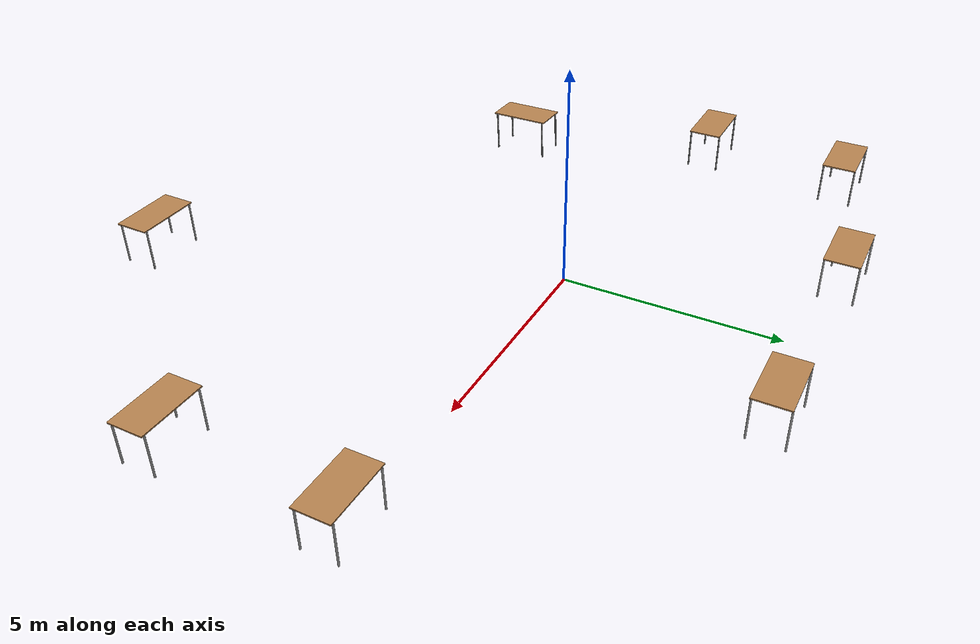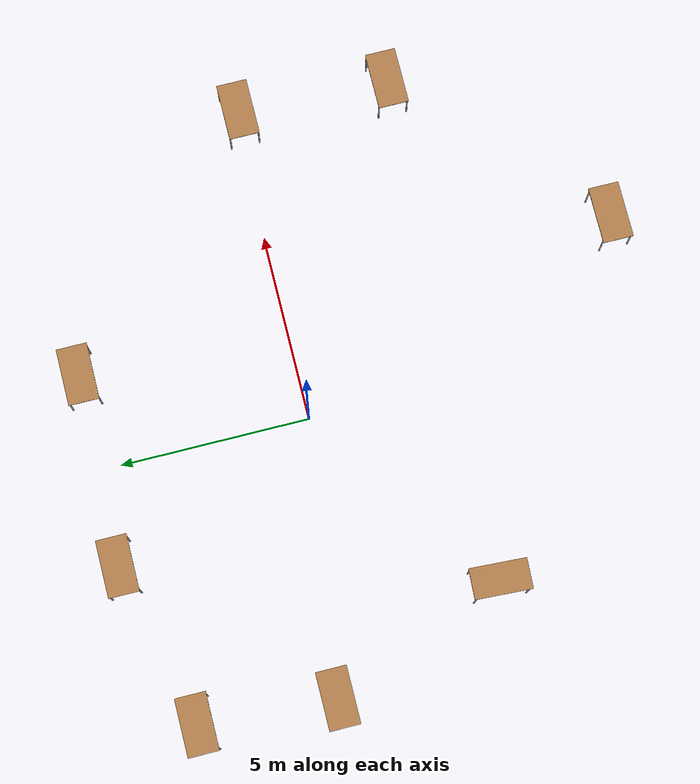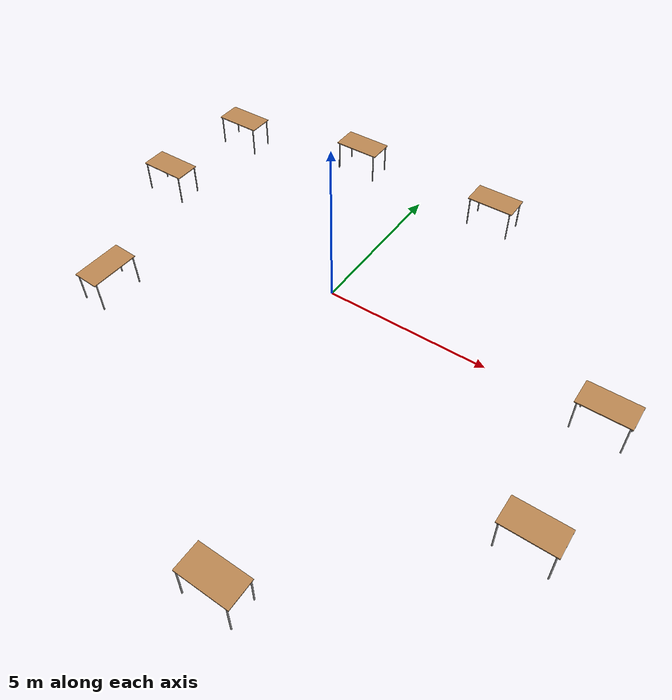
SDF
<?xml version='1.0'?>
<sdf version='1.6'>
  <model name='model'>
    <model name='table'>
      <static>1</static>
      <link name='link'>
        <collision name='surface'>
          <pose frame=''>0 0 1 0 -0 0</pose>
          <geometry>
            <box>
              <size>1.5 0.8 0.03</size>
            </box>
          </geometry>
          <surface>
            <friction>
              <ode>
                <mu>0.6</mu>
                <mu2>0.6</mu2>
              </ode>
            </friction>
          </surface>
        </collision>
        <visual name='visual1'>
          <pose frame=''>0 0 1 0 -0 0</pose>
          <geometry>
            <box>
              <size>1.5 0.8 0.03</size>
            </box>
          </geometry>
          <material>
            <script>
              <uri>file://media/materials/scripts/gazebo.material</uri>
              <name>Gazebo/Wood</name>
            </script>
          </material>
        </visual>
        <collision name='front_left_leg'>
          <pose frame=''>0.68 0.38 0.5 0 -0 0</pose>
          <geometry>
            <cylinder>
              <radius>0.02</radius>
              <length>1</length>
            </cylinder>
          </geometry>
        </collision>
        <visual name='front_left_leg'>
          <pose frame=''>0.68 0.38 0.5 0 -0 0</pose>
          <geometry>
            <cylinder>
              <radius>0.02</radius>
              <length>1</length>
            </cylinder>
          </geometry>
          <material>
            <script>
              <uri>file://media/materials/scripts/gazebo.material</uri>
              <name>Gazebo/Grey</name>
            </script>
          </material>
        </visual>
        <collision name='front_right_leg'>
          <pose frame=''>0.68 -0.38 0.5 0 -0 0</pose>
          <geometry>
            <cylinder>
              <radius>0.02</radius>
              <length>1</length>
            </cylinder>
          </geometry>
        </collision>
        <visual name='front_right_leg'>
          <pose frame=''>0.68 -0.38 0.5 0 -0 0</pose>
          <geometry>
            <cylinder>
              <radius>0.02</radius>
              <length>1</length>
            </cylinder>
          </geometry>
          <material>
            <script>
              <uri>file://media/materials/scripts/gazebo.material</uri>
              <name>Gazebo/Grey</name>
            </script>
          </material>
        </visual>
        <collision name='back_right_leg'>
          <pose frame=''>-0.68 -0.38 0.5 0 -0 0</pose>
          <geometry>
            <cylinder>
              <radius>0.02</radius>
              <length>1</length>
            </cylinder>
          </geometry>
        </collision>
        <visual name='back_right_leg'>
          <pose frame=''>-0.68 -0.38 0.5 0 -0 0</pose>
          <geometry>
            <cylinder>
              <radius>0.02</radius>
              <length>1</length>
            </cylinder>
          </geometry>
          <material>
            <script>
              <uri>file://media/materials/scripts/gazebo.material</uri>
              <name>Gazebo/Grey</name>
            </script>
          </material>
        </visual>
        <collision name='back_left_leg'>
          <pose frame=''>-0.68 0.38 0.5 0 -0 0</pose>
          <geometry>
            <cylinder>
              <radius>0.02</radius>
              <length>1</length>
            </cylinder>
          </geometry>
        </collision>
        <visual name='back_left_leg'>
          <pose frame=''>-0.68 0.38 0.5 0 -0 0</pose>
          <geometry>
            <cylinder>
              <radius>0.02</radius>
              <length>1</length>
            </cylinder>
          </geometry>
          <material>
            <script>
              <uri>file://media/materials/scripts/gazebo.material</uri>
              <name>Gazebo/Grey</name>
            </script>
          </material>
        </visual>
      </link>
      <pose frame=''>-7.17173 1.02852 0.005879 0 -0 0</pose>
    </model>
    <model name='table_clone'>
      <static>1</static>
      <link name='link'>
        <collision name='surface'>
          <pose frame=''>0 0 1 0 -0 0</pose>
          <geometry>
            <box>
              <size>1.5 0.8 0.03</size>
            </box>
          </geometry>
          <surface>
            <friction>
              <ode>
                <mu>0.6</mu>
                <mu2>0.6</mu2>
              </ode>
            </friction>
          </surface>
        </collision>
        <visual name='visual1'>
          <pose frame=''>0 0 1 0 -0 0</pose>
          <geometry>
            <box>
              <size>1.5 0.8 0.03</size>
            </box>
          </geometry>
          <material>
            <script>
              <uri>file://media/materials/scripts/gazebo.material</uri>
              <name>Gazebo/Wood</name>
            </script>
          </material>
        </visual>
        <collision name='front_left_leg'>
          <pose frame=''>0.68 0.38 0.5 0 -0 0</pose>
          <geometry>
            <cylinder>
              <radius>0.02</radius>
              <length>1</length>
            </cylinder>
          </geometry>
        </collision>
        <visual name='front_left_leg'>
          <pose frame=''>0.68 0.38 0.5 0 -0 0</pose>
          <geometry>
            <cylinder>
              <radius>0.02</radius>
              <length>1</length>
            </cylinder>
          </geometry>
          <material>
            <script>
              <uri>file://media/materials/scripts/gazebo.material</uri>
              <name>Gazebo/Grey</name>
            </script>
          </material>
        </visual>
        <collision name='front_right_leg'>
          <pose frame=''>0.68 -0.38 0.5 0 -0 0</pose>
          <geometry>
            <cylinder>
              <radius>0.02</radius>
              <length>1</length>
            </cylinder>
          </geometry>
        </collision>
        <visual name='front_right_leg'>
          <pose frame=''>0.68 -0.38 0.5 0 -0 0</pose>
          <geometry>
            <cylinder>
              <radius>0.02</radius>
              <length>1</length>
            </cylinder>
          </geometry>
          <material>
            <script>
              <uri>file://media/materials/scripts/gazebo.material</uri>
              <name>Gazebo/Grey</name>
            </script>
          </material>
        </visual>
        <collision name='back_right_leg'>
          <pose frame=''>-0.68 -0.38 0.5 0 -0 0</pose>
          <geometry>
            <cylinder>
              <radius>0.02</radius>
              <length>1</length>
            </cylinder>
          </geometry>
        </collision>
        <visual name='back_right_leg'>
          <pose frame=''>-0.68 -0.38 0.5 0 -0 0</pose>
          <geometry>
            <cylinder>
              <radius>0.02</radius>
              <length>1</length>
            </cylinder>
          </geometry>
          <material>
            <script>
              <uri>file://media/materials/scripts/gazebo.material</uri>
              <name>Gazebo/Grey</name>
            </script>
          </material>
        </visual>
        <collision name='back_left_leg'>
          <pose frame=''>-0.68 0.38 0.5 0 -0 0</pose>
          <geometry>
            <cylinder>
              <radius>0.02</radius>
              <length>1</length>
            </cylinder>
          </geometry>
        </collision>
        <visual name='back_left_leg'>
          <pose frame=''>-0.68 0.38 0.5 0 -0 0</pose>
          <geometry>
            <cylinder>
              <radius>0.02</radius>
              <length>1</length>
            </cylinder>
          </geometry>
          <material>
            <script>
              <uri>file://media/materials/scripts/gazebo.material</uri>
              <name>Gazebo/Grey</name>
            </script>
          </material>
        </visual>
      </link>
      <pose frame=''>-6.95127 4.56782 -0.033972 0 -0 0</pose>
    </model>
    <model name='table_clone_0'>
      <static>1</static>
      <link name='link'>
        <collision name='surface'>
          <pose frame=''>0 0 1 0 -0 0</pose>
          <geometry>
            <box>
              <size>1.5 0.8 0.03</size>
            </box>
          </geometry>
          <surface>
            <friction>
              <ode>
                <mu>0.6</mu>
                <mu2>0.6</mu2>
              </ode>
            </friction>
          </surface>
        </collision>
        <visual name='visual1'>
          <pose frame=''>0 0 1 0 -0 0</pose>
          <geometry>
            <box>
              <size>1.5 0.8 0.03</size>
            </box>
          </geometry>
          <material>
            <script>
              <uri>file://media/materials/scripts/gazebo.material</uri>
              <name>Gazebo/Wood</name>
            </script>
          </material>
        </visual>
        <collision name='front_left_leg'>
          <pose frame=''>0.68 0.38 0.5 0 -0 0</pose>
          <geometry>
            <cylinder>
              <radius>0.02</radius>
              <length>1</length>
            </cylinder>
          </geometry>
        </collision>
        <visual name='front_left_leg'>
          <pose frame=''>0.68 0.38 0.5 0 -0 0</pose>
          <geometry>
            <cylinder>
              <radius>0.02</radius>
              <length>1</length>
            </cylinder>
          </geometry>
          <material>
            <script>
              <uri>file://media/materials/scripts/gazebo.material</uri>
              <name>Gazebo/Grey</name>
            </script>
          </material>
        </visual>
        <collision name='front_right_leg'>
          <pose frame=''>0.68 -0.38 0.5 0 -0 0</pose>
          <geometry>
            <cylinder>
              <radius>0.02</radius>
              <length>1</length>
            </cylinder>
          </geometry>
        </collision>
        <visual name='front_right_leg'>
          <pose frame=''>0.68 -0.38 0.5 0 -0 0</pose>
          <geometry>
            <cylinder>
              <radius>0.02</radius>
              <length>1</length>
            </cylinder>
          </geometry>
          <material>
            <script>
              <uri>file://media/materials/scripts/gazebo.material</uri>
              <name>Gazebo/Grey</name>
            </script>
          </material>
        </visual>
        <collision name='back_right_leg'>
          <pose frame=''>-0.68 -0.38 0.5 0 -0 0</pose>
          <geometry>
            <cylinder>
              <radius>0.02</radius>
              <length>1</length>
            </cylinder>
          </geometry>
        </collision>
        <visual name='back_right_leg'>
          <pose frame=''>-0.68 -0.38 0.5 0 -0 0</pose>
          <geometry>
            <cylinder>
              <radius>0.02</radius>
              <length>1</length>
            </cylinder>
          </geometry>
          <material>
            <script>
              <uri>file://media/materials/scripts/gazebo.material</uri>
              <name>Gazebo/Grey</name>
            </script>
          </material>
        </visual>
        <collision name='back_left_leg'>
          <pose frame=''>-0.68 0.38 0.5 0 -0 0</pose>
          <geometry>
            <cylinder>
              <radius>0.02</radius>
              <length>1</length>
            </cylinder>
          </geometry>
        </collision>
        <visual name='back_left_leg'>
          <pose frame=''>-0.68 0.38 0.5 0 -0 0</pose>
          <geometry>
            <cylinder>
              <radius>0.02</radius>
              <length>1</length>
            </cylinder>
          </geometry>
          <material>
            <script>
              <uri>file://media/materials/scripts/gazebo.material</uri>
              <name>Gazebo/Grey</name>
            </script>
          </material>
        </visual>
      </link>
      <pose frame=''>-5.29399 -3.59772 0.095578 0.00162 -0.033332 1.52222</pose>
    </model>
    <model name='table_clone_1'>
      <static>1</static>
      <link name='link'>
        <collision name='surface'>
          <pose frame=''>0 0 1 0 -0 0</pose>
          <geometry>
            <box>
              <size>1.5 0.8 0.03</size>
            </box>
          </geometry>
          <surface>
            <friction>
              <ode>
                <mu>0.6</mu>
                <mu2>0.6</mu2>
              </ode>
            </friction>
          </surface>
        </collision>
        <visual name='visual1'>
          <pose frame=''>0 0 1 0 -0 0</pose>
          <geometry>
            <box>
              <size>1.5 0.8 0.03</size>
            </box>
          </geometry>
          <material>
            <script>
              <uri>file://media/materials/scripts/gazebo.material</uri>
              <name>Gazebo/Wood</name>
            </script>
          </material>
        </visual>
        <collision name='front_left_leg'>
          <pose frame=''>0.68 0.38 0.5 0 -0 0</pose>
          <geometry>
            <cylinder>
              <radius>0.02</radius>
              <length>1</length>
            </cylinder>
          </geometry>
        </collision>
        <visual name='front_left_leg'>
          <pose frame=''>0.68 0.38 0.5 0 -0 0</pose>
          <geometry>
            <cylinder>
              <radius>0.02</radius>
              <length>1</length>
            </cylinder>
          </geometry>
          <material>
            <script>
              <uri>file://media/materials/scripts/gazebo.material</uri>
              <name>Gazebo/Grey</name>
            </script>
          </material>
        </visual>
        <collision name='front_right_leg'>
          <pose frame=''>0.68 -0.38 0.5 0 -0 0</pose>
          <geometry>
            <cylinder>
              <radius>0.02</radius>
              <length>1</length>
            </cylinder>
          </geometry>
        </collision>
        <visual name='front_right_leg'>
          <pose frame=''>0.68 -0.38 0.5 0 -0 0</pose>
          <geometry>
            <cylinder>
              <radius>0.02</radius>
              <length>1</length>
            </cylinder>
          </geometry>
          <material>
            <script>
              <uri>file://media/materials/scripts/gazebo.material</uri>
              <name>Gazebo/Grey</name>
            </script>
          </material>
        </visual>
        <collision name='back_right_leg'>
          <pose frame=''>-0.68 -0.38 0.5 0 -0 0</pose>
          <geometry>
            <cylinder>
              <radius>0.02</radius>
              <length>1</length>
            </cylinder>
          </geometry>
        </collision>
        <visual name='back_right_leg'>
          <pose frame=''>-0.68 -0.38 0.5 0 -0 0</pose>
          <geometry>
            <cylinder>
              <radius>0.02</radius>
              <length>1</length>
            </cylinder>
          </geometry>
          <material>
            <script>
              <uri>file://media/materials/scripts/gazebo.material</uri>
              <name>Gazebo/Grey</name>
            </script>
          </material>
        </visual>
        <collision name='back_left_leg'>
          <pose frame=''>-0.68 0.38 0.5 0 -0 0</pose>
          <geometry>
            <cylinder>
              <radius>0.02</radius>
              <length>1</length>
            </cylinder>
          </geometry>
        </collision>
        <visual name='back_left_leg'>
          <pose frame=''>-0.68 0.38 0.5 0 -0 0</pose>
          <geometry>
            <cylinder>
              <radius>0.02</radius>
              <length>1</length>
            </cylinder>
          </geometry>
          <material>
            <script>
              <uri>file://media/materials/scripts/gazebo.material</uri>
              <name>Gazebo/Grey</name>
            </script>
          </material>
        </visual>
      </link>
      <pose frame=''>8.16305 -4.11748 0.005879 0 -0 0</pose>
    </model>
    <model name='table_clone_1_clone'>
      <static>1</static>
      <link name='link'>
        <collision name='surface'>
          <pose frame=''>0 0 1 0 -0 0</pose>
          <geometry>
            <box>
              <size>1.5 0.8 0.03</size>
            </box>
          </geometry>
          <surface>
            <friction>
              <ode>
                <mu>0.6</mu>
                <mu2>0.6</mu2>
              </ode>
            </friction>
          </surface>
        </collision>
        <visual name='visual1'>
          <pose frame=''>0 0 1 0 -0 0</pose>
          <geometry>
            <box>
              <size>1.5 0.8 0.03</size>
            </box>
          </geometry>
          <material>
            <script>
              <uri>file://media/materials/scripts/gazebo.material</uri>
              <name>Gazebo/Wood</name>
            </script>
          </material>
        </visual>
        <collision name='front_left_leg'>
          <pose frame=''>0.68 0.38 0.5 0 -0 0</pose>
          <geometry>
            <cylinder>
              <radius>0.02</radius>
              <length>1</length>
            </cylinder>
          </geometry>
        </collision>
        <visual name='front_left_leg'>
          <pose frame=''>0.68 0.38 0.5 0 -0 0</pose>
          <geometry>
            <cylinder>
              <radius>0.02</radius>
              <length>1</length>
            </cylinder>
          </geometry>
          <material>
            <script>
              <uri>file://media/materials/scripts/gazebo.material</uri>
              <name>Gazebo/Grey</name>
            </script>
          </material>
        </visual>
        <collision name='front_right_leg'>
          <pose frame=''>0.68 -0.38 0.5 0 -0 0</pose>
          <geometry>
            <cylinder>
              <radius>0.02</radius>
              <length>1</length>
            </cylinder>
          </geometry>
        </collision>
        <visual name='front_right_leg'>
          <pose frame=''>0.68 -0.38 0.5 0 -0 0</pose>
          <geometry>
            <cylinder>
              <radius>0.02</radius>
              <length>1</length>
            </cylinder>
          </geometry>
          <material>
            <script>
              <uri>file://media/materials/scripts/gazebo.material</uri>
              <name>Gazebo/Grey</name>
            </script>
          </material>
        </visual>
        <collision name='back_right_leg'>
          <pose frame=''>-0.68 -0.38 0.5 0 -0 0</pose>
          <geometry>
            <cylinder>
              <radius>0.02</radius>
              <length>1</length>
            </cylinder>
          </geometry>
        </collision>
        <visual name='back_right_leg'>
          <pose frame=''>-0.68 -0.38 0.5 0 -0 0</pose>
          <geometry>
            <cylinder>
              <radius>0.02</radius>
              <length>1</length>
            </cylinder>
          </geometry>
          <material>
            <script>
              <uri>file://media/materials/scripts/gazebo.material</uri>
              <name>Gazebo/Grey</name>
            </script>
          </material>
        </visual>
        <collision name='back_left_leg'>
          <pose frame=''>-0.68 0.38 0.5 0 -0 0</pose>
          <geometry>
            <cylinder>
              <radius>0.02</radius>
              <length>1</length>
            </cylinder>
          </geometry>
        </collision>
        <visual name='back_left_leg'>
          <pose frame=''>-0.68 0.38 0.5 0 -0 0</pose>
          <geometry>
            <cylinder>
              <radius>0.02</radius>
              <length>1</length>
            </cylinder>
          </geometry>
          <material>
            <script>
              <uri>file://media/materials/scripts/gazebo.material</uri>
              <name>Gazebo/Grey</name>
            </script>
          </material>
        </visual>
      </link>
      <pose frame=''>8.28303 -0.127677 -0.007262 0 -0 0</pose>
    </model>
    <model name='table_clone_1_clone_0'>
      <static>1</static>
      <link name='link'>
        <collision name='surface'>
          <pose frame=''>0 0 1 0 -0 0</pose>
          <geometry>
            <box>
              <size>1.5 0.8 0.03</size>
            </box>
          </geometry>
          <surface>
            <friction>
              <ode>
                <mu>0.6</mu>
                <mu2>0.6</mu2>
              </ode>
            </friction>
          </surface>
        </collision>
        <visual name='visual1'>
          <pose frame=''>0 0 1 0 -0 0</pose>
          <geometry>
            <box>
              <size>1.5 0.8 0.03</size>
            </box>
          </geometry>
          <material>
            <script>
              <uri>file://media/materials/scripts/gazebo.material</uri>
              <name>Gazebo/Wood</name>
            </script>
          </material>
        </visual>
        <collision name='front_left_leg'>
          <pose frame=''>0.68 0.38 0.5 0 -0 0</pose>
          <geometry>
            <cylinder>
              <radius>0.02</radius>
              <length>1</length>
            </cylinder>
          </geometry>
        </collision>
        <visual name='front_left_leg'>
          <pose frame=''>0.68 0.38 0.5 0 -0 0</pose>
          <geometry>
            <cylinder>
              <radius>0.02</radius>
              <length>1</length>
            </cylinder>
          </geometry>
          <material>
            <script>
              <uri>file://media/materials/scripts/gazebo.material</uri>
              <name>Gazebo/Grey</name>
            </script>
          </material>
        </visual>
        <collision name='front_right_leg'>
          <pose frame=''>0.68 -0.38 0.5 0 -0 0</pose>
          <geometry>
            <cylinder>
              <radius>0.02</radius>
              <length>1</length>
            </cylinder>
          </geometry>
        </collision>
        <visual name='front_right_leg'>
          <pose frame=''>0.68 -0.38 0.5 0 -0 0</pose>
          <geometry>
            <cylinder>
              <radius>0.02</radius>
              <length>1</length>
            </cylinder>
          </geometry>
          <material>
            <script>
              <uri>file://media/materials/scripts/gazebo.material</uri>
              <name>Gazebo/Grey</name>
            </script>
          </material>
        </visual>
        <collision name='back_right_leg'>
          <pose frame=''>-0.68 -0.38 0.5 0 -0 0</pose>
          <geometry>
            <cylinder>
              <radius>0.02</radius>
              <length>1</length>
            </cylinder>
          </geometry>
        </collision>
        <visual name='back_right_leg'>
          <pose frame=''>-0.68 -0.38 0.5 0 -0 0</pose>
          <geometry>
            <cylinder>
              <radius>0.02</radius>
              <length>1</length>
            </cylinder>
          </geometry>
          <material>
            <script>
              <uri>file://media/materials/scripts/gazebo.material</uri>
              <name>Gazebo/Grey</name>
            </script>
          </material>
        </visual>
        <collision name='back_left_leg'>
          <pose frame=''>-0.68 0.38 0.5 0 -0 0</pose>
          <geometry>
            <cylinder>
              <radius>0.02</radius>
              <length>1</length>
            </cylinder>
          </geometry>
        </collision>
        <visual name='back_left_leg'>
          <pose frame=''>-0.68 0.38 0.5 0 -0 0</pose>
          <geometry>
            <cylinder>
              <radius>0.02</radius>
              <length>1</length>
            </cylinder>
          </geometry>
          <material>
            <script>
              <uri>file://media/materials/scripts/gazebo.material</uri>
              <name>Gazebo/Grey</name>
            </script>
          </material>
        </visual>
      </link>
      <pose frame=''>2.40207 5.49447 -0.059796 0 -0 0</pose>
    </model>
    <model name='table_clone_1_clone_1'>
      <static>1</static>
      <link name='link'>
        <collision name='surface'>
          <pose frame=''>0 0 1 0 -0 0</pose>
          <geometry>
            <box>
              <size>1.5 0.8 0.03</size>
            </box>
          </geometry>
          <surface>
            <friction>
              <ode>
                <mu>0.6</mu>
                <mu2>0.6</mu2>
              </ode>
            </friction>
          </surface>
        </collision>
        <visual name='visual1'>
          <pose frame=''>0 0 1 0 -0 0</pose>
          <geometry>
            <box>
              <size>1.5 0.8 0.03</size>
            </box>
          </geometry>
          <material>
            <script>
              <uri>file://media/materials/scripts/gazebo.material</uri>
              <name>Gazebo/Wood</name>
            </script>
          </material>
        </visual>
        <collision name='front_left_leg'>
          <pose frame=''>0.68 0.38 0.5 0 -0 0</pose>
          <geometry>
            <cylinder>
              <radius>0.02</radius>
              <length>1</length>
            </cylinder>
          </geometry>
        </collision>
        <visual name='front_left_leg'>
          <pose frame=''>0.68 0.38 0.5 0 -0 0</pose>
          <geometry>
            <cylinder>
              <radius>0.02</radius>
              <length>1</length>
            </cylinder>
          </geometry>
          <material>
            <script>
              <uri>file://media/materials/scripts/gazebo.material</uri>
              <name>Gazebo/Grey</name>
            </script>
          </material>
        </visual>
        <collision name='front_right_leg'>
          <pose frame=''>0.68 -0.38 0.5 0 -0 0</pose>
          <geometry>
            <cylinder>
              <radius>0.02</radius>
              <length>1</length>
            </cylinder>
          </geometry>
        </collision>
        <visual name='front_right_leg'>
          <pose frame=''>0.68 -0.38 0.5 0 -0 0</pose>
          <geometry>
            <cylinder>
              <radius>0.02</radius>
              <length>1</length>
            </cylinder>
          </geometry>
          <material>
            <script>
              <uri>file://media/materials/scripts/gazebo.material</uri>
              <name>Gazebo/Grey</name>
            </script>
          </material>
        </visual>
        <collision name='back_right_leg'>
          <pose frame=''>-0.68 -0.38 0.5 0 -0 0</pose>
          <geometry>
            <cylinder>
              <radius>0.02</radius>
              <length>1</length>
            </cylinder>
          </geometry>
        </collision>
        <visual name='back_right_leg'>
          <pose frame=''>-0.68 -0.38 0.5 0 -0 0</pose>
          <geometry>
            <cylinder>
              <radius>0.02</radius>
              <length>1</length>
            </cylinder>
          </geometry>
          <material>
            <script>
              <uri>file://media/materials/scripts/gazebo.material</uri>
              <name>Gazebo/Grey</name>
            </script>
          </material>
        </visual>
        <collision name='back_left_leg'>
          <pose frame=''>-0.68 0.38 0.5 0 -0 0</pose>
          <geometry>
            <cylinder>
              <radius>0.02</radius>
              <length>1</length>
            </cylinder>
          </geometry>
        </collision>
        <visual name='back_left_leg'>
          <pose frame=''>-0.68 0.38 0.5 0 -0 0</pose>
          <geometry>
            <cylinder>
              <radius>0.02</radius>
              <length>1</length>
            </cylinder>
          </geometry>
          <material>
            <script>
              <uri>file://media/materials/scripts/gazebo.material</uri>
              <name>Gazebo/Grey</name>
            </script>
          </material>
        </visual>
      </link>
      <pose frame=''>-2.64428 5.59611 -0.012185 0 -0 0</pose>
    </model>
    <model name='table_clone_1_clone_2'>
      <static>1</static>
      <link name='link'>
        <collision name='surface'>
          <pose frame=''>0 0 1 0 -0 0</pose>
          <geometry>
            <box>
              <size>1.5 0.8 0.03</size>
            </box>
          </geometry>
          <surface>
            <friction>
              <ode>
                <mu>0.6</mu>
                <mu2>0.6</mu2>
              </ode>
            </friction>
          </surface>
        </collision>
        <visual name='visual1'>
          <pose frame=''>0 0 1 0 -0 0</pose>
          <geometry>
            <box>
              <size>1.5 0.8 0.03</size>
            </box>
          </geometry>
          <material>
            <script>
              <uri>file://media/materials/scripts/gazebo.material</uri>
              <name>Gazebo/Wood</name>
            </script>
          </material>
        </visual>
        <collision name='front_left_leg'>
          <pose frame=''>0.68 0.38 0.5 0 -0 0</pose>
          <geometry>
            <cylinder>
              <radius>0.02</radius>
              <length>1</length>
            </cylinder>
          </geometry>
        </collision>
        <visual name='front_left_leg'>
          <pose frame=''>0.68 0.38 0.5 0 -0 0</pose>
          <geometry>
            <cylinder>
              <radius>0.02</radius>
              <length>1</length>
            </cylinder>
          </geometry>
          <material>
            <script>
              <uri>file://media/materials/scripts/gazebo.material</uri>
              <name>Gazebo/Grey</name>
            </script>
          </material>
        </visual>
        <collision name='front_right_leg'>
          <pose frame=''>0.68 -0.38 0.5 0 -0 0</pose>
          <geometry>
            <cylinder>
              <radius>0.02</radius>
              <length>1</length>
            </cylinder>
          </geometry>
        </collision>
        <visual name='front_right_leg'>
          <pose frame=''>0.68 -0.38 0.5 0 -0 0</pose>
          <geometry>
            <cylinder>
              <radius>0.02</radius>
              <length>1</length>
            </cylinder>
          </geometry>
          <material>
            <script>
              <uri>file://media/materials/scripts/gazebo.material</uri>
              <name>Gazebo/Grey</name>
            </script>
          </material>
        </visual>
        <collision name='back_right_leg'>
          <pose frame=''>-0.68 -0.38 0.5 0 -0 0</pose>
          <geometry>
            <cylinder>
              <radius>0.02</radius>
              <length>1</length>
            </cylinder>
          </geometry>
        </collision>
        <visual name='back_right_leg'>
          <pose frame=''>-0.68 -0.38 0.5 0 -0 0</pose>
          <geometry>
            <cylinder>
              <radius>0.02</radius>
              <length>1</length>
            </cylinder>
          </geometry>
          <material>
            <script>
              <uri>file://media/materials/scripts/gazebo.material</uri>
              <name>Gazebo/Grey</name>
            </script>
          </material>
        </visual>
        <collision name='back_left_leg'>
          <pose frame=''>-0.68 0.38 0.5 0 -0 0</pose>
          <geometry>
            <cylinder>
              <radius>0.02</radius>
              <length>1</length>
            </cylinder>
          </geometry>
        </collision>
        <visual name='back_left_leg'>
          <pose frame=''>-0.68 0.38 0.5 0 -0 0</pose>
          <geometry>
            <cylinder>
              <radius>0.02</radius>
              <length>1</length>
            </cylinder>
          </geometry>
          <material>
            <script>
              <uri>file://media/materials/scripts/gazebo.material</uri>
              <name>Gazebo/Grey</name>
            </script>
          </material>
        </visual>
      </link>
      <pose frame=''>3.21313 -8.84404 0.005879 0 -0 0</pose>
    </model>
    <static>0</static>
    <allow_auto_disable>1</allow_auto_disable>
  </model>
</sdf>
